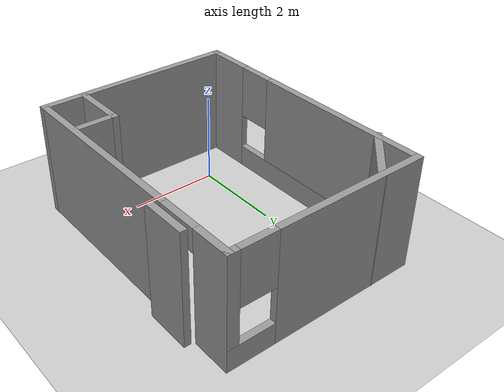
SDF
<sdf version="1.6">
 <world name="default">
  <light name="sun" type="directional">
   <pose>0 0 10 0 -0 0</pose>
   <diffuse>0.8 0.8 0.8 1</diffuse>
   <specular>0.2 0.2 0.2 1</specular>
   <attenuation>
    <range>1000</range>
    <constant>0.9</constant>
    <linear>0.01</linear>
    <quadratic>0.001</quadratic>
   </attenuation>
   <direction>-0.5 0.1 -0.9</direction>
  </light>
  <model name="ground_plane">
   <static>1</static>
   <link name="link">
    <collision name="collision">
     <geometry><plane><normal>0 0 1</normal><size>100 100</size></plane></geometry>
     <surface>
      <contact><collide_bitmask>65535</collide_bitmask></contact>
      <friction><ode><mu>100</mu><mu2>50</mu2></ode></friction>
     </surface>
    </collision>
    <visual name="visual">
     <cast_shadows>0</cast_shadows>
     <geometry><plane><normal>0 0 1</normal><size>100 100</size></plane></geometry>
     <material>
      <script><uri>file://media/materials/scripts/gazebo.material</uri><name>Gazebo/Grey</name></script>
     </material>
    </visual>
   </link>
  </model>
  <gravity>0 0 -9.8</gravity>
  <magnetic_field>6e-06 2.3e-05 -4.2e-05</magnetic_field>
  <atmosphere type="adiabatic"/>
  <physics name="default_physics" default="0" type="ode">
   <max_step_size>0.001</max_step_size>
   <real_time_factor>1</real_time_factor>
   <real_time_update_rate>1000</real_time_update_rate>
  </physics>
  <scene><ambient>0.4 0.4 0.4 1</ambient><background>0.7 0.7 0.7 1</background><shadows>1</shadows></scene>
  <audio><device>default</device></audio>
  <spherical_coordinates>
   <surface_model>EARTH_WGS84</surface_model>
   <latitude_deg>0</latitude_deg>
   <longitude_deg>0</longitude_deg>
   <elevation>0</elevation>
   <heading_deg>0</heading_deg>
  </spherical_coordinates>
  <model name="one_room">
   <pose>1.14166 1.93008 0 0 -0 0</pose>
   <link name="Wall_12">
    <pose>-2.14166 -0.005084 0 0 -0 1.5708</pose>
    <visual name="Wall_12_Visual_0">
     <pose>-2.43927 0 1.25 0 -0 0</pose>
     <geometry><box><size>1.12146 0.15 2.5</size></box></geometry>
     <material>
      <script><uri>file://media/materials/scripts/gazebo.material</uri><name>Gazebo/Grey</name></script>
      <ambient>1 1 1 1</ambient>
     </material>
     <meta><layer>0</layer></meta>
    </visual>
    <collision name="Wall_12_Collision_0">
     <geometry><box><size>1.12146 0.15 2.5</size></box></geometry>
     <pose>-2.43927 0 1.25 0 -0 0</pose>
    </collision>
    <visual name="Wall_12_Visual_1">
     <pose>0.560728 0 0.25 0 -0 0</pose>
     <geometry><box><size>4.87854 0.15 0.5</size></box></geometry>
     <material>
      <script><uri>file://media/materials/scripts/gazebo.material</uri><name>Gazebo/Grey</name></script>
      <ambient>1 1 1 1</ambient>
     </material>
     <meta><layer>0</layer></meta>
    </visual>
    <collision name="Wall_12_Collision_1">
     <geometry><box><size>4.87854 0.15 0.5</size></box></geometry>
     <pose>0.560728 0 0.25 0 -0 0</pose>
    </collision>
    <visual name="Wall_12_Visual_2">
     <pose>0.960728 0 1.5 0 -0 0</pose>
     <geometry><box><size>4.07854 0.15 2</size></box></geometry>
     <material>
      <script><uri>file://media/materials/scripts/gazebo.material</uri><name>Gazebo/Grey</name></script>
      <ambient>1 1 1 1</ambient>
     </material>
     <meta><layer>0</layer></meta>
    </visual>
    <collision name="Wall_12_Collision_2">
     <geometry><box><size>4.07854 0.15 2</size></box></geometry>
     <pose>0.960728 0 1.5 0 -0 0</pose>
    </collision>
    <visual name="Wall_12_Visual_3">
     <pose>-1.47854 0 1.9 0 -0 0</pose>
     <geometry><box><size>0.8 0.15 1.2</size></box></geometry>
     <material>
      <script><uri>file://media/materials/scripts/gazebo.material</uri><name>Gazebo/Grey</name></script>
      <ambient>1 1 1 1</ambient>
     </material>
     <meta><layer>0</layer></meta>
    </visual>
    <collision name="Wall_12_Collision_3">
     <geometry><box><size>0.8 0.15 1.2</size></box></geometry>
     <pose>-1.47854 0 1.9 0 -0 0</pose>
    </collision>
   </link>
   <link name="Wall_14">
    <pose>0.033336 2.91992 0 0 -0 0</pose>
    <visual name="Wall_14_Visual_0">
     <pose>-0.532632 0 1.25 0 -0 0</pose>
     <geometry><box><size>3.43474 0.15 2.5</size></box></geometry>
     <material>
      <script><uri>file://media/materials/scripts/gazebo.material</uri><name>Gazebo/Grey</name></script>
      <ambient>1 1 1 1</ambient>
     </material>
     <meta><layer>0</layer></meta>
    </visual>
    <collision name="Wall_14_Collision_0">
     <geometry><box><size>3.43474 0.15 2.5</size></box></geometry>
     <pose>-0.532632 0 1.25 0 -0 0</pose>
    </collision>
    <visual name="Wall_14_Visual_1">
     <pose>1.71737 0 0.25 0 -0 0</pose>
     <geometry><box><size>1.06526 0.15 0.5</size></box></geometry>
     <material>
      <script><uri>file://media/materials/scripts/gazebo.material</uri><name>Gazebo/Grey</name></script>
      <ambient>1 1 1 1</ambient>
     </material>
     <meta><layer>0</layer></meta>
    </visual>
    <collision name="Wall_14_Collision_1">
     <geometry><box><size>1.06526 0.15 0.5</size></box></geometry>
     <pose>1.71737 0 0.25 0 -0 0</pose>
    </collision>
    <visual name="Wall_14_Visual_2">
     <pose>2.11737 0 1.5 0 -0 0</pose>
     <geometry><box><size>0.265263 0.15 2</size></box></geometry>
     <material>
      <script><uri>file://media/materials/scripts/gazebo.material</uri><name>Gazebo/Grey</name></script>
      <ambient>1 1 1 1</ambient>
     </material>
     <meta><layer>0</layer></meta>
    </visual>
    <collision name="Wall_14_Collision_2">
     <geometry><box><size>0.265263 0.15 2</size></box></geometry>
     <pose>2.11737 0 1.5 0 -0 0</pose>
    </collision>
    <visual name="Wall_14_Visual_3">
     <pose>1.58474 0 1.9 0 -0 0</pose>
     <geometry><box><size>0.8 0.15 1.2</size></box></geometry>
     <material>
      <script><uri>file://media/materials/scripts/gazebo.material</uri><name>Gazebo/Grey</name></script>
      <ambient>1 1 1 1</ambient>
     </material>
     <meta><layer>0</layer></meta>
    </visual>
    <collision name="Wall_14_Collision_3">
     <geometry><box><size>0.8 0.15 1.2</size></box></geometry>
     <pose>1.58474 0 1.9 0 -0 0</pose>
    </collision>
   </link>
   <link name="Wall_15">
    <pose>2.20834 -0.005084 0 0 -0 -1.5708</pose>
    <visual name="Wall_15_Visual_0">
     <pose>-2.56858 0 1.25 0 -0 0</pose>
     <geometry><box><size>0.862842 0.15 2.5</size></box></geometry>
     <material>
      <script><uri>file://media/materials/scripts/gazebo.material</uri><name>Gazebo/Grey</name></script>
      <ambient>1 1 1 1</ambient>
     </material>
     <meta><layer>0</layer></meta>
    </visual>
    <collision name="Wall_15_Collision_0">
     <geometry><box><size>0.862842 0.15 2.5</size></box></geometry>
     <pose>-2.56858 0 1.25 0 -0 0</pose>
    </collision>
    <visual name="Wall_15_Visual_1">
     <pose>0.881421 0 1.25 0 -0 0</pose>
     <geometry><box><size>4.23716 0.15 2.5</size></box></geometry>
     <material>
      <script><uri>file://media/materials/scripts/gazebo.material</uri><name>Gazebo/Grey</name></script>
      <ambient>1 1 1 1</ambient>
     </material>
     <meta><layer>0</layer></meta>
    </visual>
    <collision name="Wall_15_Collision_1">
     <geometry><box><size>4.23716 0.15 2.5</size></box></geometry>
     <pose>0.881421 0 1.25 0 -0 0</pose>
    </collision>
    <visual name="Wall_15_Visual_2">
     <pose>-1.68716 0 2.25 0 -0 0</pose>
     <geometry><box><size>0.9 0.15 0.5</size></box></geometry>
     <material>
      <script><uri>file://media/materials/scripts/gazebo.material</uri><name>Gazebo/Grey</name></script>
      <ambient>1 1 1 1</ambient>
     </material>
     <meta><layer>0</layer></meta>
    </visual>
    <collision name="Wall_15_Collision_2">
     <geometry><box><size>0.9 0.15 0.5</size></box></geometry>
     <pose>-1.68716 0 2.25 0 -0 0</pose>
    </collision>
   </link>
   <link name="Wall_16">
    <collision name="Wall_16_Collision">
     <geometry><box><size>4.5 0.15 2.5</size></box></geometry>
     <pose>0 0 1.25 0 -0 0</pose>
    </collision>
    <visual name="Wall_16_Visual">
     <pose>0 0 1.25 0 -0 0</pose>
     <geometry><box><size>4.5 0.15 2.5</size></box></geometry>
     <material>
      <script><uri>file://media/materials/scripts/gazebo.material</uri><name>Gazebo/Grey</name></script>
      <ambient>1 1 1 1</ambient>
     </material>
     <meta><layer>0</layer></meta>
    </visual>
    <pose>0.033336 -2.93008 0 0 -0 3.14159</pose>
   </link>
   <link name="Wall_18">
    <collision name="Wall_18_Collision">
     <geometry><box><size>1.5 0.15 2.5</size></box></geometry>
     <pose>0 0 1.25 0 -0 0</pose>
    </collision>
    <visual name="Wall_18_Visual">
     <pose>0 0 1.25 0 -0 0</pose>
     <geometry><box><size>1.5 0.15 2.5</size></box></geometry>
     <material>
      <script><uri>file://media/materials/scripts/gazebo.material</uri><name>Gazebo/Grey</name></script>
      <ambient>1 1 1 1</ambient>
     </material>
     <meta><layer>0</layer></meta>
    </visual>
    <pose>-1.69997 2.42172 0 0 -0 0.785398</pose>
   </link>
   <link name="Wall_20">
    <collision name="Wall_20_Collision">
     <geometry><box><size>1.25 0.15 2.5</size></box></geometry>
     <pose>0 0 1.25 0 -0 0</pose>
    </collision>
    <visual name="Wall_20_Visual">
     <pose>0 0 1.25 0 -0 0</pose>
     <geometry><box><size>1.25 0.15 2.5</size></box></geometry>
     <material>
      <script><uri>file://media/materials/scripts/gazebo.material</uri><name>Gazebo/Grey</name></script>
      <ambient>1 1 1 1</ambient>
     </material>
     <meta><layer>0</layer></meta>
    </visual>
    <pose>1.32074 -2.31534 0 0 -0 1.5708</pose>
   </link>
   <link name="Wall_21">
    <collision name="Wall_21_Collision">
     <geometry><box><size>1 0.15 2.5</size></box></geometry>
     <pose>0 0 1.25 0 -0 0</pose>
    </collision>
    <visual name="Wall_21_Visual">
     <pose>0 0 1.25 0 -0 0</pose>
     <geometry><box><size>1 0.15 2.5</size></box></geometry>
     <material>
      <script><uri>file://media/materials/scripts/gazebo.material</uri><name>Gazebo/Grey</name></script>
      <ambient>1 1 1 1</ambient>
     </material>
     <meta><layer>0</layer></meta>
    </visual>
    <pose>1.74574 -1.76534 0 0 -0 0</pose>
   </link>
   <static>1</static>
  </model>
  <model name="one_room_0">
   <pose>3.56164 3.52411 0 0 -0 0</pose>
   <link name="Wall_25">
    <collision name="Wall_25_Collision">
     <geometry><box><size>1 0.15 2.5</size></box></geometry>
     <pose>0 0 1.25 0 -0 0</pose>
    </collision>
    <visual name="Wall_25_Visual">
     <pose>0 0 1.25 0 -0 0</pose>
     <geometry><box><size>1 0.15 2.5</size></box></geometry>
     <material>
      <script><uri>file://media/materials/scripts/gazebo.material</uri><name>Gazebo/Grey</name></script>
      <ambient>1 1 1 1</ambient>
     </material>
     <meta><layer>0</layer></meta>
    </visual>
    <pose>0 0 0 0 -0 1.5708</pose>
   </link>
   <static>1</static>
  </model>
 </world>
</sdf>
